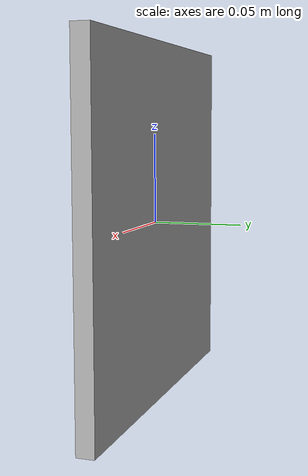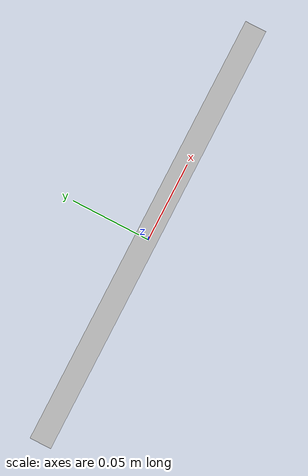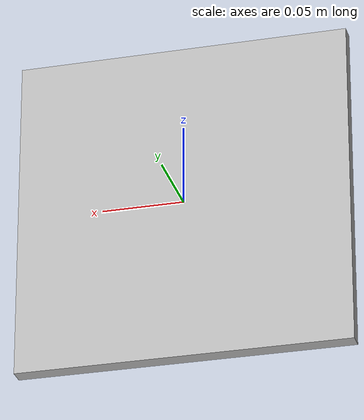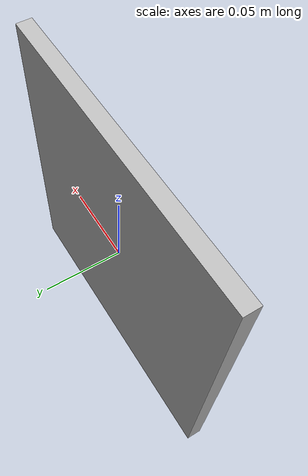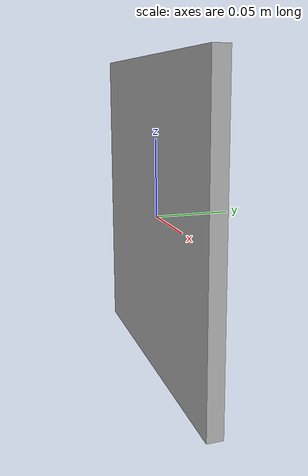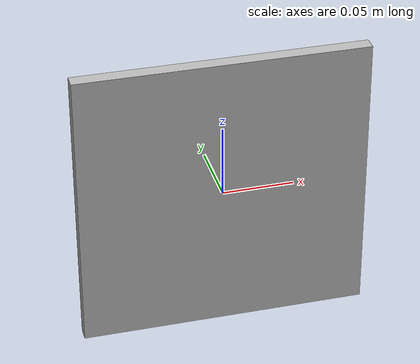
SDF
<?xml version='1.0'?>
<sdf version='1.6'>
  <model name='Apriltag16_05_00008'>
    <link name='main'>
    <pose frame=''>0 0.0 0.0 0 0 0</pose>
      <gravity>0</gravity>
      <visual name='main_Visual'>
        <geometry>
          <box>
            <size>0.203 0.01 0.203</size>
          </box>
        </geometry>
        <material>
          <script>
            <uri>model://Apriltag16_05_00008/materials/scripts</uri>
            <uri>model://Apriltag16_05_00008/materials/textures</uri>
            <name>Apriltag16_05_00008</name>
          </script>
        </material>
      </visual>
     </link>
  </model>
</sdf>
